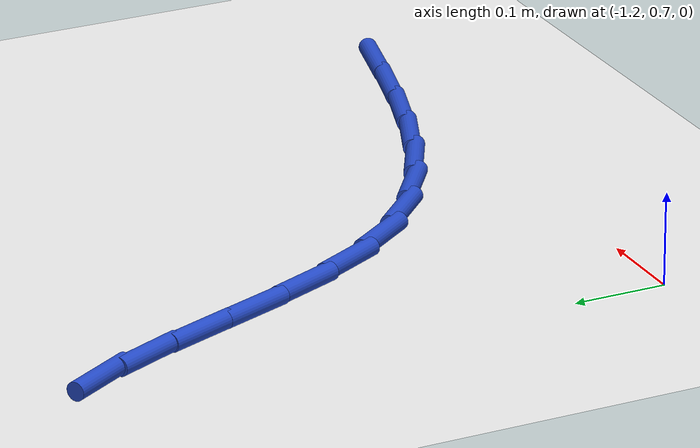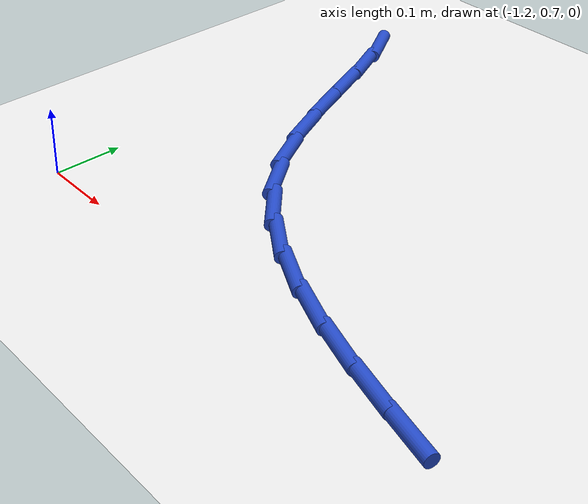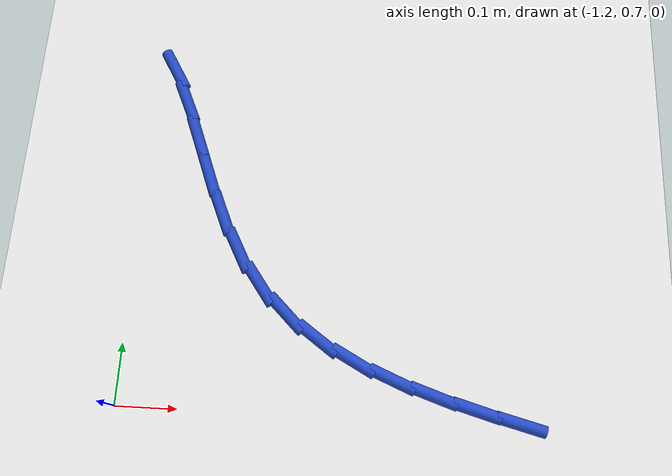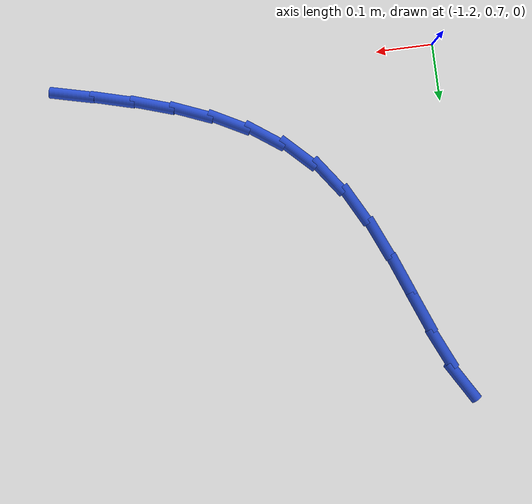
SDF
<sdf version="1.6">
 <world name="default">
  <model name="ground_plane">
   <static>1</static>
   <link name="link">
    <collision name="collision">
     <geometry><plane><normal>0 0 1</normal><size>100 100</size></plane></geometry>
     <surface><friction><ode><mu>100</mu><mu2>50</mu2></ode></friction></surface>
    </collision>
    <visual name="visual">
     <cast_shadows>0</cast_shadows>
     <geometry><plane><normal>0 0 1</normal><size>100 100</size></plane></geometry>
     <material>
      <script><uri>file://media/materials/scripts/gazebo.material</uri><name>Gazebo/WhiteGlow</name></script>
     </material>
    </visual>
   </link>
  </model>
  <model name="line">
   <link name="link_15">
    <pose>-0.5573144045743046 0.7058690278032985 0.01 0 1.57 -0.24644968173394877</pose>
    <collision name="collision">
     <geometry><cylinder><radius>0.01</radius><length>0.08</length></cylinder></geometry>
    </collision>
    <visual name="visual">
     <material>
      <script><name>Gazebo/Blue</name><uri>file://media/materials/scripts/gazebo.material</uri></script>
     </material>
     <geometry><cylinder><radius>0.01</radius><length>0.08</length></cylinder></geometry>
    </visual>
   </link>
   <link name="link_16">
    <pose>-0.6265815281665319 0.7232941101622314 0.01 0 1.57 -0.27203203988944485</pose>
    <collision name="collision">
     <geometry><cylinder><radius>0.01</radius><length>0.08</length></cylinder></geometry>
    </collision>
    <visual name="visual">
     <material>
      <script><name>Gazebo/Blue</name><uri>file://media/materials/scripts/gazebo.material</uri></script>
     </material>
     <geometry><cylinder><radius>0.01</radius><length>0.08</length></cylinder></geometry>
    </visual>
   </link>
   <link name="link_17">
    <pose>-0.6949532886151236 0.7423662113173825 0.01 0 1.57 -0.32037022531744946</pose>
    <collision name="collision">
     <geometry><cylinder><radius>0.01</radius><length>0.08</length></cylinder></geometry>
    </collision>
    <visual name="visual">
     <material>
      <script><name>Gazebo/Blue</name><uri>file://media/materials/scripts/gazebo.material</uri></script>
     </material>
     <geometry><cylinder><radius>0.01</radius><length>0.08</length></cylinder></geometry>
    </visual>
   </link>
   <link name="link_18">
    <pose>-0.76133764620882 0.7643925636532461 0.01 0 1.57 -0.39358974384906203</pose>
    <collision name="collision">
     <geometry><cylinder><radius>0.01</radius><length>0.08</length></cylinder></geometry>
    </collision>
    <visual name="visual">
     <material>
      <script><name>Gazebo/Blue</name><uri>file://media/materials/scripts/gazebo.material</uri></script>
     </material>
     <geometry><cylinder><radius>0.01</radius><length>0.08</length></cylinder></geometry>
    </visual>
   </link>
   <link name="link_19">
    <pose>-0.8246425612363604 0.7906803995543155 0.01 0 1.57 -0.4941441909651373</pose>
    <collision name="collision">
     <geometry><cylinder><radius>0.01</radius><length>0.08</length></cylinder></geometry>
    </collision>
    <visual name="visual">
     <material>
      <script><name>Gazebo/Blue</name><uri>file://media/materials/scripts/gazebo.material</uri></script>
     </material>
     <geometry><cylinder><radius>0.01</radius><length>0.08</length></cylinder></geometry>
    </visual>
   </link>
   <link name="link_20">
    <pose>-0.8837759939864844 0.8225369514050836 0.01 0 1.57 -0.6233645729593565</pose>
    <collision name="collision">
     <geometry><cylinder><radius>0.01</radius><length>0.08</length></cylinder></geometry>
    </collision>
    <visual name="visual">
     <material>
      <script><name>Gazebo/Blue</name><uri>file://media/materials/scripts/gazebo.material</uri></script>
     </material>
     <geometry><cylinder><radius>0.01</radius><length>0.08</length></cylinder></geometry>
    </visual>
   </link>
   <link name="link_21">
    <pose>-0.9376459047479312 0.8612694515900439 0.01 0 1.57 -0.7790584414097377</pose>
    <collision name="collision">
     <geometry><cylinder><radius>0.01</radius><length>0.08</length></cylinder></geometry>
    </collision>
    <visual name="visual">
     <material>
      <script><name>Gazebo/Blue</name><uri>file://media/materials/scripts/gazebo.material</uri></script>
     </material>
     <geometry><cylinder><radius>0.01</radius><length>0.08</length></cylinder></geometry>
    </visual>
   </link>
   <link name="link_22">
    <pose>-0.9851602538094414 0.9081851324936905 0.01 0 1.57 -0.9498985811531147</pose>
    <collision name="collision">
     <geometry><cylinder><radius>0.01</radius><length>0.08</length></cylinder></geometry>
    </collision>
    <visual name="visual">
     <material>
      <script><name>Gazebo/Blue</name><uri>file://media/materials/scripts/gazebo.material</uri></script>
     </material>
     <geometry><cylinder><radius>0.01</radius><length>0.08</length></cylinder></geometry>
    </visual>
   </link>
   <link name="link_23">
    <pose>-1.025360766644655 0.9643887816995999 0.01 0 1.57 -1.0864277514276037</pose>
    <collision name="collision">
     <geometry><cylinder><radius>0.01</radius><length>0.08</length></cylinder></geometry>
    </collision>
    <visual name="visual">
     <material>
      <script><name>Gazebo/Blue</name><uri>file://media/materials/scripts/gazebo.material</uri></script>
     </material>
     <geometry><cylinder><radius>0.01</radius><length>0.08</length></cylinder></geometry>
    </visual>
   </link>
   <link name="link_24">
    <pose>-1.059022164860801 1.0283624112349639 0.01 0 1.57 -1.1684618880867943</pose>
    <collision name="collision">
     <geometry><cylinder><radius>0.01</radius><length>0.08</length></cylinder></geometry>
    </collision>
    <visual name="visual">
     <material>
      <script><name>Gazebo/Blue</name><uri>file://media/materials/scripts/gazebo.material</uri></script>
     </material>
     <geometry><cylinder><radius>0.01</radius><length>0.08</length></cylinder></geometry>
    </visual>
   </link>
   <link name="link_25">
    <pose>-1.088127988967174 1.0967585653012957 0.01 0 1.57 -1.2054670512139092</pose>
    <collision name="collision">
     <geometry><cylinder><radius>0.01</radius><length>0.08</length></cylinder></geometry>
    </collision>
    <visual name="visual">
     <material>
      <script><name>Gazebo/Blue</name><uri>file://media/materials/scripts/gazebo.material</uri></script>
     </material>
     <geometry><cylinder><radius>0.01</radius><length>0.08</length></cylinder></geometry>
    </visual>
   </link>
   <link name="link_26">
    <pose>-1.114686426444936 1.1661924865308175 0.01 0 1.57 -1.200813311280387</pose>
    <collision name="collision">
     <geometry><cylinder><radius>0.01</radius><length>0.08</length></cylinder></geometry>
    </collision>
    <visual name="visual">
     <material>
      <script><name>Gazebo/Blue</name><uri>file://media/materials/scripts/gazebo.material</uri></script>
     </material>
     <geometry><cylinder><radius>0.01</radius><length>0.08</length></cylinder></geometry>
    </visual>
   </link>
   <link name="link_27">
    <pose>-1.14070566477525 1.2332794175557507 0.01 0 1.57 -1.1495918542840056</pose>
    <collision name="collision">
     <geometry><cylinder><radius>0.01</radius><length>0.08</length></cylinder></geometry>
    </collision>
    <visual name="visual">
     <material>
      <script><name>Gazebo/Blue</name><uri>file://media/materials/scripts/gazebo.material</uri></script>
     </material>
     <geometry><cylinder><radius>0.01</radius><length>0.08</length></cylinder></geometry>
    </visual>
   </link>
   <link name="link_28">
    <pose>-1.1681938914392782 1.2946346010083183 0.01 0 1.57 -1.0357116491849485</pose>
    <collision name="collision">
     <geometry><cylinder><radius>0.01</radius><length>0.08</length></cylinder></geometry>
    </collision>
    <visual name="visual">
     <material>
      <script><name>Gazebo/Blue</name><uri>file://media/materials/scripts/gazebo.material</uri></script>
     </material>
     <geometry><cylinder><radius>0.01</radius><length>0.08</length></cylinder></geometry>
    </visual>
   </link>
  </model>
 </world>
</sdf>
